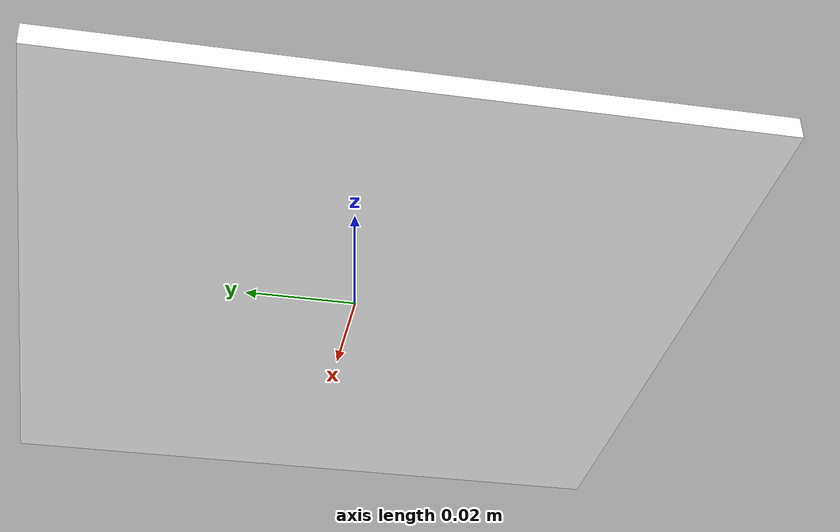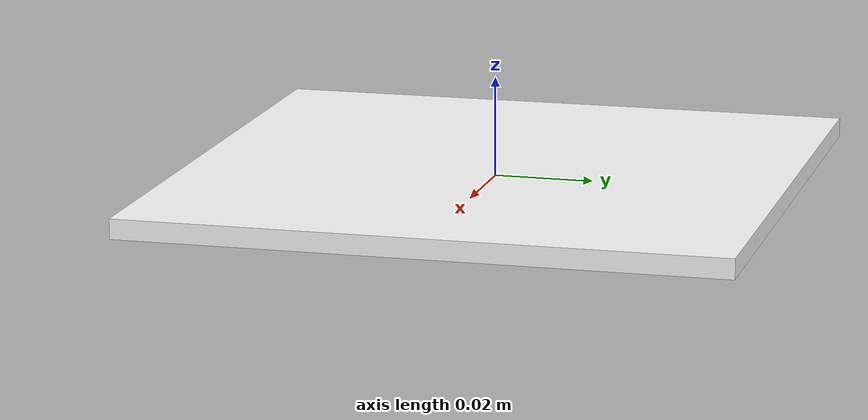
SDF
<?xml version='1.0'?>
<sdf version='1.7'>
  <model name='ground_marker'>
    <link name='ground_marker_link'>
      <self_collide>0</self_collide>
      <enable_wind>0</enable_wind>
      <kinematic>0</kinematic>
      <material>ArucoMarker-0</material>
      <pose>0 0 0 0 -0 0</pose>
      <gravity>1</gravity>
      <inertial>
        <mass>1</mass>
        <pose>0 0 0 0 -0 0</pose>
        <inertia>
          <ixx>1</ixx>
          <ixy>0</ixy>
          <ixz>0</ixz>
          <iyy>1</iyy>
          <iyz>0</iyz>
          <izz>1</izz>
        </inertia>
      </inertial>
      <visual name='ground_marker_visual'>
        <geometry>
          <box>
            <size>0.12 0.12 0.004</size>
          </box>
        </geometry>
        <material>
          <shader type='pixel'>
            <normal_map>__default__</normal_map>
          </shader>
          <script>
            <name>ArucoMarker-0</name>
          </script>
          <ambient>1 1 1 1</ambient>
          <diffuse>1 1 1 1</diffuse>
          <specular>0 0 0 1</specular>
          <emissive>0 0 0 1</emissive>
        </material>
        <pose>0 0 0 0 -0 0</pose>
        <transparency>0</transparency>
        <cast_shadows>1</cast_shadows>
      </visual>
    </link>
    <static>1</static>
    <allow_auto_disable>1</allow_auto_disable>
  </model>
</sdf>
